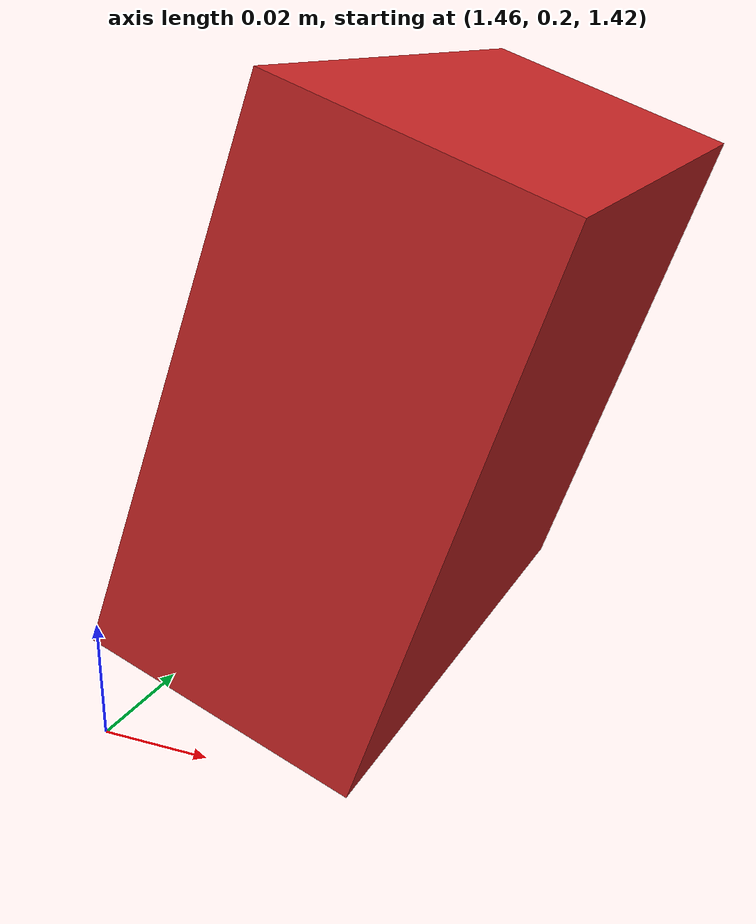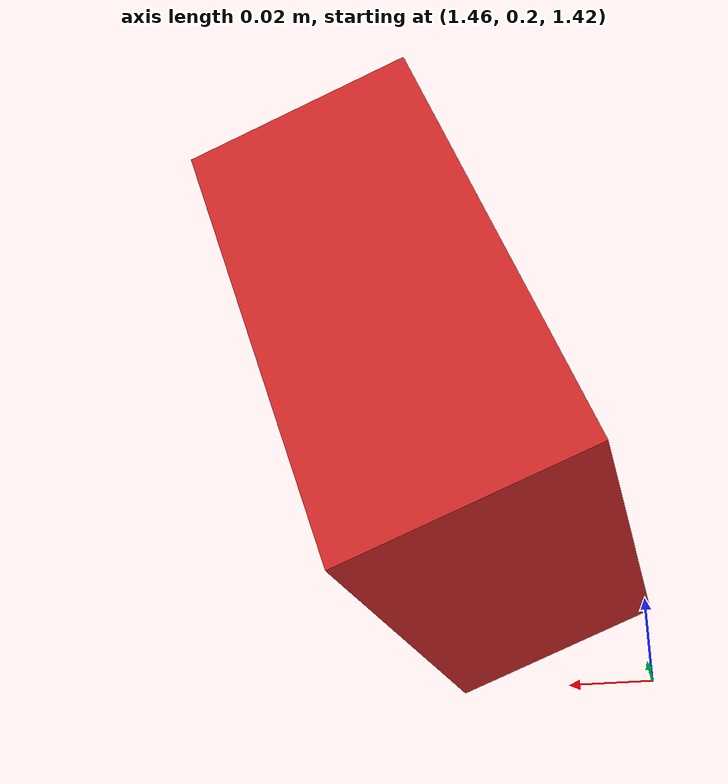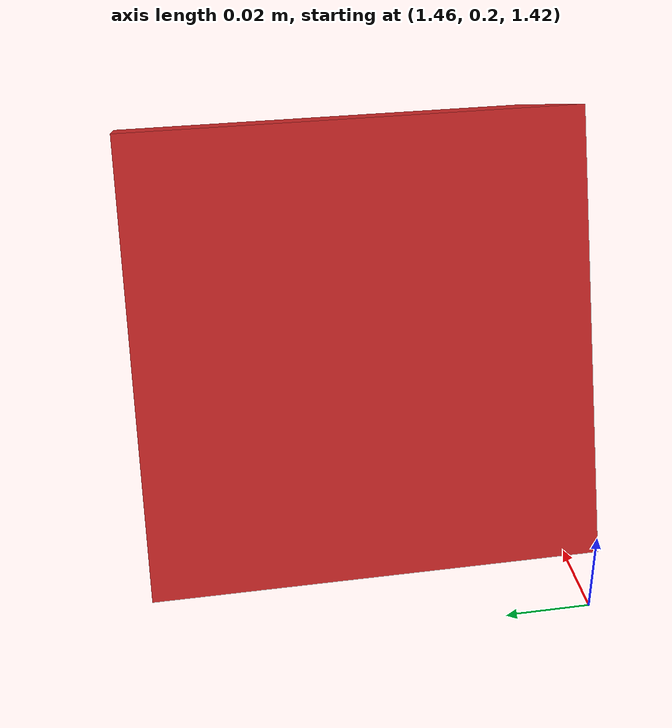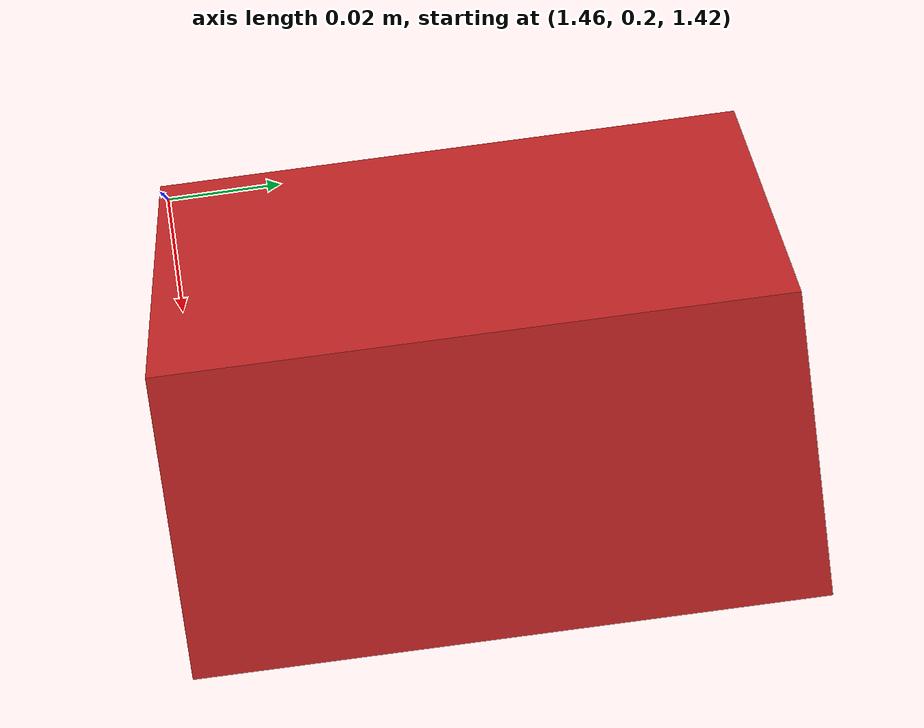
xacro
<?xml version="1.0"?>
<robot xmlns:xacro="http://ros.org/wiki/xacro" name="camera" >

  <!-- Include camera description -->
  <xacro:include filename="$(find lab09_gazebo)/urdf/inc/camera_model.xacro" />

  <link name="world" />

  <!-- Link camera with world joint -->
  <joint name="camera_world_joint" type="fixed">
    <parent link="world" />
    <child link = "camera_link" />
    <origin xyz="1.5 0.25 1.475" rpy="0.0 ${pi/2.6} ${pi}" />
  </joint>

</robot>

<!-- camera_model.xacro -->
<robot xmlns:xacro="http://www.ros.org/wiki/xacro">

    <xacro:include filename="$(find lab09_gazebo)/urdf/inc/camera.gazebo.xacro"/>

 <!-- Camera -->
  <link name="camera_link">
    <collision>
      <origin xyz="0 0 0" rpy="0 0 0"/>
      <geometry>
    <box size="0.1 0.1 0.05"/>
      </geometry>
    </collision>

    <visual>
      <origin xyz="0 0 0" rpy="0 0 0"/>
      <geometry>
    <box size="0.1 0.1 0.05"/>
      </geometry>
      <material name="red"/>
    </visual>

    <inertial>
      <mass value="1e-5" />
      <origin xyz="0 0 0" rpy="0 0 0"/>
      <inertia ixx="1e-6" ixy="0" ixz="0" iyy="1e-6" iyz="0" izz="1e-6" />
    </inertial>
  </link>

</robot>
